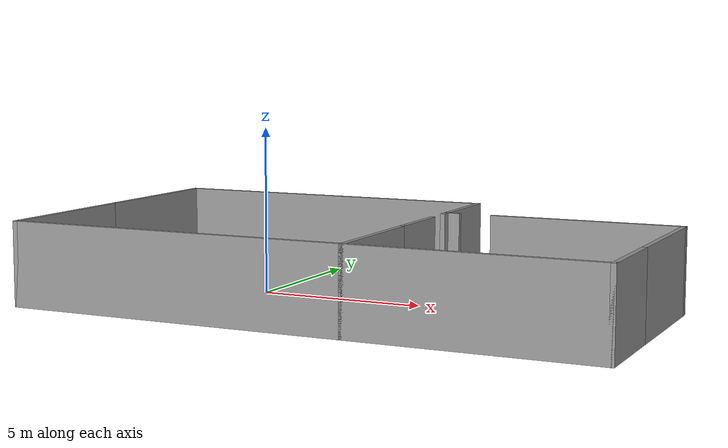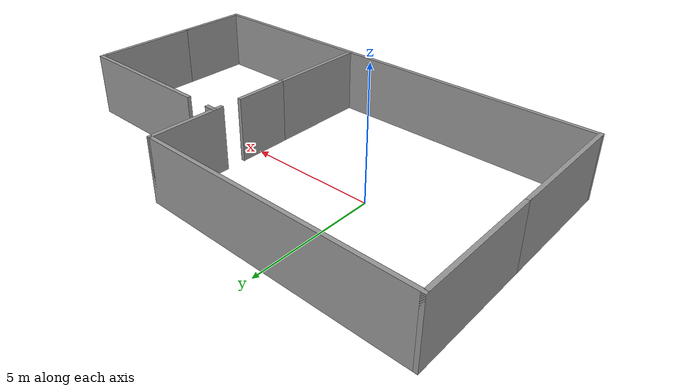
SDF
<?xml version='1.0'?>
<sdf version='1.6'>
  <model name='mafja2'>
    <pose frame=''>3.425 -0.3 0 0 -0 0</pose>
    <link name='Wall_0'>
      <collision name='Wall_0_Collision'>
        <geometry>
          <box>
            <size>5 0.15 2.5</size>
          </box>
        </geometry>
        <pose frame=''>0 0 1.25 0 -0 0</pose>
      </collision>
      <visual name='Wall_0_Visual'>
        <pose frame=''>0 0 1.25 0 -0 0</pose>
        <geometry>
          <box>
            <size>5 0.15 2.5</size>
          </box>
        </geometry>
        <material>
          <script>
            <uri>file://media/materials/scripts/gazebo.material</uri>
            <name>Gazebo/Grey</name>
          </script>
          <ambient>1 1 1 1</ambient>
        </material>
        <meta>
          <layer>0</layer>
        </meta>
      </visual>
      <pose frame=''>-8.725 -2.425 0 0 -0 1.5708</pose>
    </link>
    <link name='Wall_11'>
      <collision name='Wall_11_Collision'>
        <geometry>
          <box>
            <size>4 0.15 2.5</size>
          </box>
        </geometry>
        <pose frame=''>0 0 1.25 0 -0 0</pose>
      </collision>
      <visual name='Wall_11_Visual'>
        <pose frame=''>0 0 1.25 0 -0 0</pose>
        <geometry>
          <box>
            <size>4 0.15 2.5</size>
          </box>
        </geometry>
        <material>
          <script>
            <uri>file://media/materials/scripts/gazebo.material</uri>
            <name>Gazebo/Grey</name>
          </script>
          <ambient>1 1 1 1</ambient>
        </material>
        <meta>
          <layer>0</layer>
        </meta>
      </visual>
      <pose frame=''>1.625 -2.925 0 0 -0 1.5708</pose>
    </link>
    <link name='Wall_13'>
      <collision name='Wall_13_Collision'>
        <geometry>
          <box>
            <size>2.25 0.15 2.5</size>
          </box>
        </geometry>
        <pose frame=''>0 0 1.25 0 -0 0</pose>
      </collision>
      <visual name='Wall_13_Visual'>
        <pose frame=''>0 0 1.25 0 -0 0</pose>
        <geometry>
          <box>
            <size>2.25 0.15 2.5</size>
          </box>
        </geometry>
        <material>
          <script>
            <uri>file://media/materials/scripts/gazebo.material</uri>
            <name>Gazebo/Grey</name>
          </script>
          <ambient>1 1 1 1</ambient>
        </material>
        <meta>
          <layer>0</layer>
        </meta>
      </visual>
      <pose frame=''>1.625 0.05 0 0 -0 1.5708</pose>
    </link>
    <link name='Wall_2'>
      <collision name='Wall_2_Collision'>
        <geometry>
          <box>
            <size>5 0.15 2.5</size>
          </box>
        </geometry>
        <pose frame=''>0 0 1.25 0 -0 0</pose>
      </collision>
      <visual name='Wall_2_Visual'>
        <pose frame=''>0 0 1.25 0 -0 0</pose>
        <geometry>
          <box>
            <size>5 0.15 2.5</size>
          </box>
        </geometry>
        <material>
          <script>
            <uri>file://media/materials/scripts/gazebo.material</uri>
            <name>Gazebo/Grey</name>
          </script>
          <ambient>1 1 1 1</ambient>
        </material>
        <meta>
          <layer>0</layer>
        </meta>
      </visual>
      <pose frame=''>-8.725 2.425 0 0 -0 1.5708</pose>
    </link>
    <link name='Wall_21'>
      <collision name='Wall_21_Collision'>
        <geometry>
          <box>
            <size>0.15 0.15 2.5</size>
          </box>
        </geometry>
        <pose frame=''>0 0 1.25 0 -0 0</pose>
      </collision>
      <visual name='Wall_21_Visual'>
        <pose frame=''>0 0 1.25 0 -0 0</pose>
        <geometry>
          <box>
            <size>0.15 0.15 2.5</size>
          </box>
        </geometry>
        <material>
          <script>
            <uri>file://media/materials/scripts/gazebo.material</uri>
            <name>Gazebo/Grey</name>
          </script>
          <ambient>1 1 1 1</ambient>
        </material>
        <meta>
          <layer>0</layer>
        </meta>
      </visual>
      <pose frame=''>1.625 2.28 0 0 -0 0</pose>
    </link>
    <link name='Wall_22'>
      <collision name='Wall_22_Collision'>
        <geometry>
          <box>
            <size>0.15 0.15 2.5</size>
          </box>
        </geometry>
        <pose frame=''>0 0 1.25 0 -0 0</pose>
      </collision>
      <visual name='Wall_22_Visual'>
        <pose frame=''>0 0 1.25 0 -0 0</pose>
        <geometry>
          <box>
            <size>0.15 0.15 2.5</size>
          </box>
        </geometry>
        <material>
          <script>
            <uri>file://media/materials/scripts/gazebo.material</uri>
            <name>Gazebo/Grey</name>
          </script>
          <ambient>1 1 1 1</ambient>
        </material>
        <meta>
          <layer>0</layer>
        </meta>
      </visual>
      <pose frame=''>1.625 2.28 0 0 -0 0</pose>
    </link>
    <link name='Wall_23'>
      <collision name='Wall_23_Collision'>
        <geometry>
          <box>
            <size>0.5 0.15 2.5</size>
          </box>
        </geometry>
        <pose frame=''>0 0 1.25 0 -0 0</pose>
      </collision>
      <visual name='Wall_23_Visual'>
        <pose frame=''>0 0 1.25 0 -0 0</pose>
        <geometry>
          <box>
            <size>0.5 0.15 2.5</size>
          </box>
        </geometry>
        <material>
          <script>
            <uri>file://media/materials/scripts/gazebo.material</uri>
            <name>Gazebo/Grey</name>
          </script>
          <ambient>1 1 1 1</ambient>
        </material>
        <meta>
          <layer>0</layer>
        </meta>
      </visual>
      <pose frame=''>1.8 2.27 0 0 -0 0</pose>
    </link>
    <link name='Wall_25'>
      <collision name='Wall_25_Collision'>
        <geometry>
          <box>
            <size>5.75 0.15 2.5</size>
          </box>
        </geometry>
        <pose frame=''>0 0 1.25 0 -0 0</pose>
      </collision>
      <visual name='Wall_25_Visual'>
        <pose frame=''>0 0 1.25 0 -0 0</pose>
        <geometry>
          <box>
            <size>5.75 0.15 2.5</size>
          </box>
        </geometry>
        <material>
          <script>
            <uri>file://media/materials/scripts/gazebo.material</uri>
            <name>Gazebo/Grey</name>
          </script>
          <ambient>1 1 1 1</ambient>
        </material>
        <meta>
          <layer>0</layer>
        </meta>
      </visual>
      <pose frame=''>5.915 2.25 0 0 -0 0</pose>
    </link>
    <link name='Wall_3'>
      <collision name='Wall_3_Collision'>
        <geometry>
          <box>
            <size>10.5 0.15 2.5</size>
          </box>
        </geometry>
        <pose frame=''>0 0 1.25 0 -0 0</pose>
      </collision>
      <visual name='Wall_3_Visual'>
        <pose frame=''>0 0 1.25 0 -0 0</pose>
        <geometry>
          <box>
            <size>10.5 0.15 2.5</size>
          </box>
        </geometry>
        <material>
          <script>
            <uri>file://media/materials/scripts/gazebo.material</uri>
            <name>Gazebo/Grey</name>
          </script>
          <ambient>1 1 1 1</ambient>
        </material>
        <meta>
          <layer>0</layer>
        </meta>
      </visual>
      <pose frame=''>-3.55 4.85 0 0 -0 0</pose>
    </link>
    <link name='Wall_31'>
      <collision name='Wall_31_Collision'>
        <geometry>
          <box>
            <size>7.25 0.15 2.5</size>
          </box>
        </geometry>
        <pose frame=''>0 0 1.25 0 -0 0</pose>
      </collision>
      <visual name='Wall_31_Visual'>
        <pose frame=''>0 0 1.25 0 -0 0</pose>
        <geometry>
          <box>
            <size>7.25 0.15 2.5</size>
          </box>
        </geometry>
        <material>
          <script>
            <uri>file://media/materials/scripts/gazebo.material</uri>
            <name>Gazebo/Grey</name>
          </script>
          <ambient>1 1 1 1</ambient>
        </material>
        <meta>
          <layer>0</layer>
        </meta>
      </visual>
      <pose frame=''>5.175 -4.85 0 0 -0 0</pose>
    </link>
    <link name='Wall_37'>
      <collision name='Wall_37_Collision'>
        <geometry>
          <box>
            <size>3 0.15 2.5</size>
          </box>
        </geometry>
        <pose frame=''>0 0 1.25 0 -0 0</pose>
      </collision>
      <visual name='Wall_37_Visual'>
        <pose frame=''>0 0 1.25 0 -0 0</pose>
        <geometry>
          <box>
            <size>3 0.15 2.5</size>
          </box>
        </geometry>
        <material>
          <script>
            <uri>file://media/materials/scripts/gazebo.material</uri>
            <name>Gazebo/Grey</name>
          </script>
          <ambient>1 1 1 1</ambient>
        </material>
        <meta>
          <layer>0</layer>
        </meta>
      </visual>
      <pose frame=''>8.725 -3.425 0 0 -0 1.5708</pose>
    </link>
    <link name='Wall_38'>
      <collision name='Wall_38_Collision'>
        <geometry>
          <box>
            <size>4.25 0.15 2.5</size>
          </box>
        </geometry>
        <pose frame=''>0 0 1.25 0 -0 0</pose>
      </collision>
      <visual name='Wall_38_Visual'>
        <pose frame=''>0 0 1.25 0 -0 0</pose>
        <geometry>
          <box>
            <size>4.25 0.15 2.5</size>
          </box>
        </geometry>
        <material>
          <script>
            <uri>file://media/materials/scripts/gazebo.material</uri>
            <name>Gazebo/Grey</name>
          </script>
          <ambient>1 1 1 1</ambient>
        </material>
        <meta>
          <layer>0</layer>
        </meta>
      </visual>
      <pose frame=''>8.725 0.05 0 0 -0 1.5708</pose>
    </link>
    <link name='Wall_39'>
      <collision name='Wall_39_Collision'>
        <geometry>
          <box>
            <size>0.15 0.15 2.5</size>
          </box>
        </geometry>
        <pose frame=''>0 0 1.25 0 -0 0</pose>
      </collision>
      <visual name='Wall_39_Visual'>
        <pose frame=''>0 0 1.25 0 -0 0</pose>
        <geometry>
          <box>
            <size>0.15 0.15 2.5</size>
          </box>
        </geometry>
        <material>
          <script>
            <uri>file://media/materials/scripts/gazebo.material</uri>
            <name>Gazebo/Grey</name>
          </script>
          <ambient>1 1 1 1</ambient>
        </material>
        <meta>
          <layer>0</layer>
        </meta>
      </visual>
      <pose frame=''>8.725 2.1 0 0 -0 0</pose>
    </link>
    <link name='Wall_4'>
      <collision name='Wall_4_Collision'>
        <geometry>
          <box>
            <size>3 0.15 2.5</size>
          </box>
        </geometry>
        <pose frame=''>0 0 1.25 0 -0 0</pose>
      </collision>
      <visual name='Wall_4_Visual'>
        <pose frame=''>0 0 1.25 0 -0 0</pose>
        <geometry>
          <box>
            <size>3 0.15 2.5</size>
          </box>
        </geometry>
        <material>
          <script>
            <uri>file://media/materials/scripts/gazebo.material</uri>
            <name>Gazebo/Grey</name>
          </script>
          <ambient>1 1 1 1</ambient>
        </material>
        <meta>
          <layer>0</layer>
        </meta>
      </visual>
      <pose frame=''>1.625 3.425 0 0 -0 -1.5708</pose>
    </link>
    <link name='Wall_6'>
      <collision name='Wall_6_Collision'>
        <geometry>
          <box>
            <size>10.5 0.15 2.5</size>
          </box>
        </geometry>
        <pose frame=''>0 0 1.25 0 -0 0</pose>
      </collision>
      <visual name='Wall_6_Visual'>
        <pose frame=''>0 0 1.25 0 -0 0</pose>
        <geometry>
          <box>
            <size>10.5 0.15 2.5</size>
          </box>
        </geometry>
        <material>
          <script>
            <uri>file://media/materials/scripts/gazebo.material</uri>
            <name>Gazebo/Grey</name>
          </script>
          <ambient>1 1 1 1</ambient>
        </material>
        <meta>
          <layer>0</layer>
        </meta>
      </visual>
      <pose frame=''>-3.55 -4.85 0 0 -0 0</pose>
    </link>
    <static>1</static>
  </model>
</sdf>
